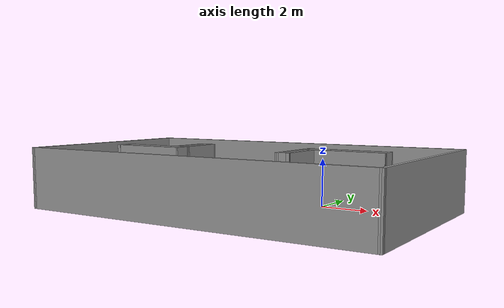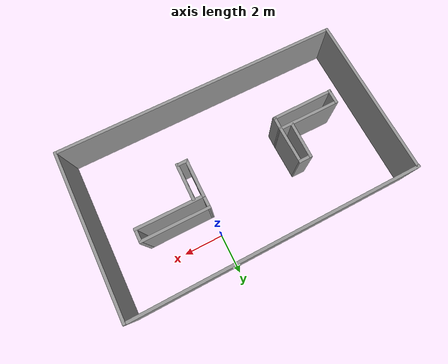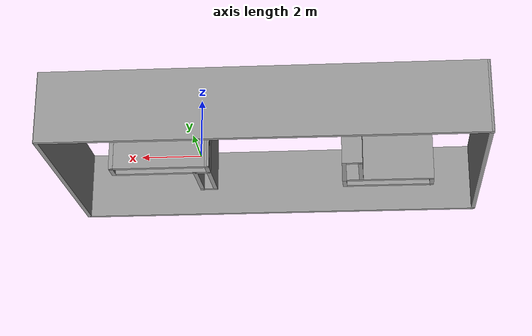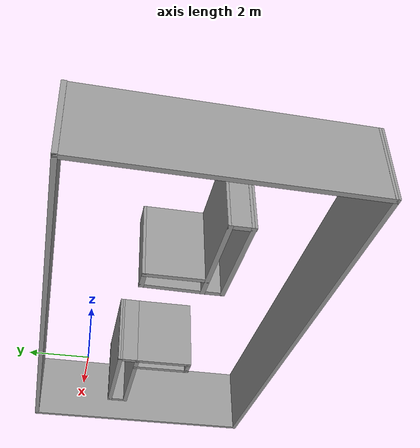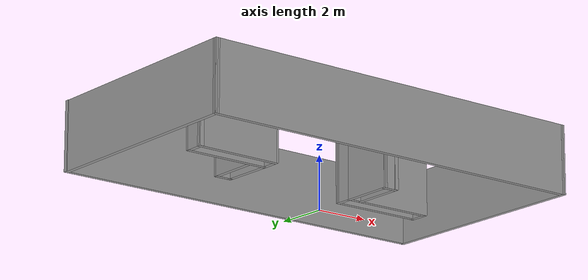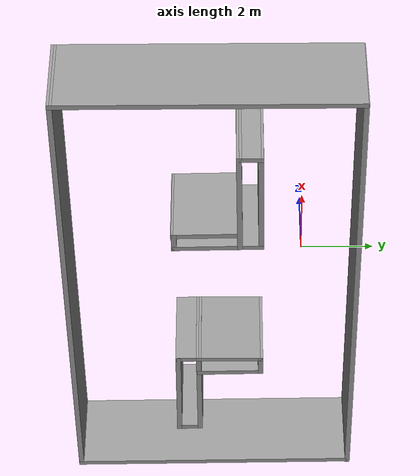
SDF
<?xml version='1.0'?>
<sdf version='1.6'>
  <model name='Untitled'>
    <pose frame=''>-2.14902 -2.53382 0 0 -0 0</pose>
    <link name='Wall_0'>
      <collision name='Wall_0_Collision'>
        <geometry>
          <box>
            <size>8.4629 0.15 2.5</size>
          </box>
        </geometry>
        <pose frame=''>0 0 1.25 0 -0 0</pose>
      </collision>
      <visual name='Wall_0_Visual'>
        <pose frame=''>0 0 1.25 0 -0 0</pose>
        <geometry>
          <box>
            <size>8.4629 0.15 2.5</size>
          </box>
        </geometry>
        <material>
          <script>
            <uri>file://media/materials/scripts/gazebo.material</uri>
            <name>Gazebo/Grey</name>
          </script>
          <ambient>1 1 1 1</ambient>
        </material>
        <meta>
          <layer>0</layer>
        </meta>
      </visual>
      <pose frame=''>-7.39012 -0.03456 0 0 -0 -1.57914</pose>
    </link>
    <link name='Wall_1'>
      <collision name='Wall_1_Collision'>
        <geometry>
          <box>
            <size>15 0.15 2.5</size>
          </box>
        </geometry>
        <pose frame=''>0 0 1.25 0 -0 0</pose>
      </collision>
      <visual name='Wall_1_Visual'>
        <pose frame=''>0 0 1.25 0 -0 0</pose>
        <geometry>
          <box>
            <size>15 0.15 2.5</size>
          </box>
        </geometry>
        <material>
          <script>
            <uri>file://media/materials/scripts/gazebo.material</uri>
            <name>Gazebo/Grey</name>
          </script>
          <ambient>1 1 1 1</ambient>
        </material>
        <meta>
          <layer>0</layer>
        </meta>
      </visual>
      <pose frame=''>0.000184 -4.19087 0 0 -0 0</pose>
    </link>
    <link name='Wall_10'>
      <collision name='Wall_10_Collision'>
        <geometry>
          <box>
            <size>1.95706 0.15 2.5</size>
          </box>
        </geometry>
        <pose frame=''>0 0 1.25 0 -0 0</pose>
      </collision>
      <visual name='Wall_10_Visual'>
        <pose frame=''>0 0 1.25 0 -0 0</pose>
        <geometry>
          <box>
            <size>1.95706 0.15 2.5</size>
          </box>
        </geometry>
        <material>
          <script>
            <uri>file://media/materials/scripts/gazebo.material</uri>
            <name>Gazebo/Grey</name>
          </script>
          <ambient>1 1 1 1</ambient>
        </material>
        <meta>
          <layer>0</layer>
        </meta>
      </visual>
      <pose frame=''>-3.17878 0.491582 0 0 -0 1.55626</pose>
    </link>
    <link name='Wall_11'>
      <collision name='Wall_11_Collision'>
        <geometry>
          <box>
            <size>0.705633 0.15 2.5</size>
          </box>
        </geometry>
        <pose frame=''>0 0 1.25 0 -0 0</pose>
      </collision>
      <visual name='Wall_11_Visual'>
        <pose frame=''>0 0 1.25 0 -0 0</pose>
        <geometry>
          <box>
            <size>0.705633 0.15 2.5</size>
          </box>
        </geometry>
        <material>
          <script>
            <uri>file://media/materials/scripts/gazebo.material</uri>
            <name>Gazebo/Grey</name>
          </script>
          <ambient>1 1 1 1</ambient>
        </material>
        <meta>
          <layer>0</layer>
        </meta>
      </visual>
      <pose frame=''>-2.88784 1.40502 0 0 -0 0</pose>
    </link>
    <link name='Wall_13'>
      <collision name='Wall_13_Collision'>
        <geometry>
          <box>
            <size>1.98011 0.15 2.5</size>
          </box>
        </geometry>
        <pose frame=''>0 0 1.25 0 -0 0</pose>
      </collision>
      <visual name='Wall_13_Visual'>
        <pose frame=''>0 0 1.25 0 -0 0</pose>
        <geometry>
          <box>
            <size>1.98011 0.15 2.5</size>
          </box>
        </geometry>
        <material>
          <script>
            <uri>file://media/materials/scripts/gazebo.material</uri>
            <name>Gazebo/Grey</name>
          </script>
          <ambient>1 1 1 1</ambient>
        </material>
        <meta>
          <layer>0</layer>
        </meta>
      </visual>
      <pose frame=''>-2.60002 0.480016 0 0 -0 -1.55987</pose>
    </link>
    <link name='Wall_15'>
      <collision name='Wall_15_Collision'>
        <geometry>
          <box>
            <size>3.5 0.15 2.5</size>
          </box>
        </geometry>
        <pose frame=''>0 0 1.25 0 -0 0</pose>
      </collision>
      <visual name='Wall_15_Visual'>
        <pose frame=''>0 0 1.25 0 -0 0</pose>
        <geometry>
          <box>
            <size>3.5 0.15 2.5</size>
          </box>
        </geometry>
        <material>
          <script>
            <uri>file://media/materials/scripts/gazebo.material</uri>
            <name>Gazebo/Grey</name>
          </script>
          <ambient>1 1 1 1</ambient>
        </material>
        <meta>
          <layer>0</layer>
        </meta>
      </visual>
      <pose frame=''>3.79244 1.41502 0 0 -0 -0.004452</pose>
    </link>
    <link name='Wall_16'>
      <collision name='Wall_16_Collision'>
        <geometry>
          <box>
            <size>0.75 0.15 2.5</size>
          </box>
        </geometry>
        <pose frame=''>0 0 1.25 0 -0 0</pose>
      </collision>
      <visual name='Wall_16_Visual'>
        <pose frame=''>0 0 1.25 0 -0 0</pose>
        <geometry>
          <box>
            <size>0.75 0.15 2.5</size>
          </box>
        </geometry>
        <material>
          <script>
            <uri>file://media/materials/scripts/gazebo.material</uri>
            <name>Gazebo/Grey</name>
          </script>
          <ambient>1 1 1 1</ambient>
        </material>
        <meta>
          <layer>0</layer>
        </meta>
      </visual>
      <pose frame=''>5.46744 1.11253 0 0 -0 -1.5708</pose>
    </link>
    <link name='Wall_17'>
      <collision name='Wall_17_Collision'>
        <geometry>
          <box>
            <size>3.5 0.15 2.5</size>
          </box>
        </geometry>
        <pose frame=''>0 0 1.25 0 -0 0</pose>
      </collision>
      <visual name='Wall_17_Visual'>
        <pose frame=''>0 0 1.25 0 -0 0</pose>
        <geometry>
          <box>
            <size>3.5 0.15 2.5</size>
          </box>
        </geometry>
        <material>
          <script>
            <uri>file://media/materials/scripts/gazebo.material</uri>
            <name>Gazebo/Grey</name>
          </script>
          <ambient>1 1 1 1</ambient>
        </material>
        <meta>
          <layer>0</layer>
        </meta>
      </visual>
      <pose frame=''>3.79244 0.815018 0 0 -0 3.13714</pose>
    </link>
    <link name='Wall_18'>
      <collision name='Wall_18_Collision'>
        <geometry>
          <box>
            <size>0.75 0.15 2.5</size>
          </box>
        </geometry>
        <pose frame=''>0 0 1.25 0 -0 0</pose>
      </collision>
      <visual name='Wall_18_Visual'>
        <pose frame=''>0 0 1.25 0 -0 0</pose>
        <geometry>
          <box>
            <size>0.75 0.15 2.5</size>
          </box>
        </geometry>
        <material>
          <script>
            <uri>file://media/materials/scripts/gazebo.material</uri>
            <name>Gazebo/Grey</name>
          </script>
          <ambient>1 1 1 1</ambient>
        </material>
        <meta>
          <layer>0</layer>
        </meta>
      </visual>
      <pose frame=''>2.11744 1.12248 0 0 -0 1.5708</pose>
    </link>
    <link name='Wall_2'>
      <collision name='Wall_2_Collision'>
        <geometry>
          <box>
            <size>8.50892 0.15 2.5</size>
          </box>
        </geometry>
        <pose frame=''>0 0 1.25 0 -0 0</pose>
      </collision>
      <visual name='Wall_2_Visual'>
        <pose frame=''>0 0 1.25 0 -0 0</pose>
        <geometry>
          <box>
            <size>8.50892 0.15 2.5</size>
          </box>
        </geometry>
        <material>
          <script>
            <uri>file://media/materials/scripts/gazebo.material</uri>
            <name>Gazebo/Grey</name>
          </script>
          <ambient>1 1 1 1</ambient>
        </material>
        <meta>
          <layer>0</layer>
        </meta>
      </visual>
      <pose frame=''>7.41093 -0.011429 0 0 -0 1.57421</pose>
    </link>
    <link name='Wall_20'>
      <collision name='Wall_20_Collision'>
        <geometry>
          <box>
            <size>2.01158 0.15 2.5</size>
          </box>
        </geometry>
        <pose frame=''>0 0 1.25 0 -0 0</pose>
      </collision>
      <visual name='Wall_20_Visual'>
        <pose frame=''>0 0 1.25 0 -0 0</pose>
        <geometry>
          <box>
            <size>2.01158 0.15 2.5</size>
          </box>
        </geometry>
        <material>
          <script>
            <uri>file://media/materials/scripts/gazebo.material</uri>
            <name>Gazebo/Grey</name>
          </script>
          <ambient>1 1 1 1</ambient>
        </material>
        <meta>
          <layer>0</layer>
        </meta>
      </visual>
      <pose frame=''>2.10601 -0.108242 0 0 -0 -1.58308</pose>
    </link>
    <link name='Wall_21'>
      <collision name='Wall_21_Collision'>
        <geometry>
          <box>
            <size>0.623514 0.15 2.5</size>
          </box>
        </geometry>
        <pose frame=''>0 0 1.25 0 -0 0</pose>
      </collision>
      <visual name='Wall_21_Visual'>
        <pose frame=''>0 0 1.25 0 -0 0</pose>
        <geometry>
          <box>
            <size>0.623514 0.15 2.5</size>
          </box>
        </geometry>
        <material>
          <script>
            <uri>file://media/materials/scripts/gazebo.material</uri>
            <name>Gazebo/Grey</name>
          </script>
          <ambient>1 1 1 1</ambient>
        </material>
        <meta>
          <layer>0</layer>
        </meta>
      </visual>
      <pose frame=''>2.33705 -1.03896 0 0 -0 0</pose>
    </link>
    <link name='Wall_22'>
      <collision name='Wall_22_Collision'>
        <geometry>
          <box>
            <size>2.01158 0.15 2.5</size>
          </box>
        </geometry>
        <pose frame=''>0 0 1.25 0 -0 0</pose>
      </collision>
      <visual name='Wall_22_Visual'>
        <pose frame=''>0 0 1.25 0 -0 0</pose>
        <geometry>
          <box>
            <size>2.01158 0.15 2.5</size>
          </box>
        </geometry>
        <material>
          <script>
            <uri>file://media/materials/scripts/gazebo.material</uri>
            <name>Gazebo/Grey</name>
          </script>
          <ambient>1 1 1 1</ambient>
        </material>
        <meta>
          <layer>0</layer>
        </meta>
      </visual>
      <pose frame=''>2.58524 -0.123451 0 0 -0 1.55851</pose>
    </link>
    <link name='Wall_3'>
      <collision name='Wall_3_Collision'>
        <geometry>
          <box>
            <size>14.9023 0.15 2.5</size>
          </box>
        </geometry>
        <pose frame=''>0 0 1.25 0 -0 0</pose>
      </collision>
      <visual name='Wall_3_Visual'>
        <pose frame=''>0 0 1.25 0 -0 0</pose>
        <geometry>
          <box>
            <size>14.9023 0.15 2.5</size>
          </box>
        </geometry>
        <material>
          <script>
            <uri>file://media/materials/scripts/gazebo.material</uri>
            <name>Gazebo/Grey</name>
          </script>
          <ambient>1 1 1 1</ambient>
        </material>
        <meta>
          <layer>0</layer>
        </meta>
      </visual>
      <pose frame=''>-0.002508 4.15644 0 0 -0 -3.13689</pose>
    </link>
    <link name='Wall_5'>
      <collision name='Wall_5_Collision'>
        <geometry>
          <box>
            <size>0.781931 0.15 2.5</size>
          </box>
        </geometry>
        <pose frame=''>0 0 1.25 0 -0 0</pose>
      </collision>
      <visual name='Wall_5_Visual'>
        <pose frame=''>0 0 1.25 0 -0 0</pose>
        <geometry>
          <box>
            <size>0.781931 0.15 2.5</size>
          </box>
        </geometry>
        <material>
          <script>
            <uri>file://media/materials/scripts/gazebo.material</uri>
            <name>Gazebo/Grey</name>
          </script>
          <ambient>1 1 1 1</ambient>
        </material>
        <meta>
          <layer>0</layer>
        </meta>
      </visual>
      <pose frame=''>-5.69576 -0.767158 0 0 -0 -1.58896</pose>
    </link>
    <link name='Wall_6'>
      <collision name='Wall_6_Collision'>
        <geometry>
          <box>
            <size>3.2417 0.15 2.5</size>
          </box>
        </geometry>
        <pose frame=''>0 0 1.25 0 -0 0</pose>
      </collision>
      <visual name='Wall_6_Visual'>
        <pose frame=''>0 0 1.25 0 -0 0</pose>
        <geometry>
          <box>
            <size>3.2417 0.15 2.5</size>
          </box>
        </geometry>
        <material>
          <script>
            <uri>file://media/materials/scripts/gazebo.material</uri>
            <name>Gazebo/Grey</name>
          </script>
          <ambient>1 1 1 1</ambient>
        </material>
        <meta>
          <layer>0</layer>
        </meta>
      </visual>
      <pose frame=''>-4.15585 -1.05838 0 0 -0 0.009508</pose>
    </link>
    <link name='Wall_7'>
      <collision name='Wall_7_Collision'>
        <geometry>
          <box>
            <size>0.758804 0.15 2.5</size>
          </box>
        </geometry>
        <pose frame=''>0 0 1.25 0 -0 0</pose>
      </collision>
      <visual name='Wall_7_Visual'>
        <pose frame=''>0 0 1.25 0 -0 0</pose>
        <geometry>
          <box>
            <size>0.758804 0.15 2.5</size>
          </box>
        </geometry>
        <material>
          <script>
            <uri>file://media/materials/scripts/gazebo.material</uri>
            <name>Gazebo/Grey</name>
          </script>
          <ambient>1 1 1 1</ambient>
        </material>
        <meta>
          <layer>0</layer>
        </meta>
      </visual>
      <pose frame=''>-2.59576 -0.739332 0 0 -0 1.55194</pose>
    </link>
    <link name='Wall_8'>
      <collision name='Wall_8_Collision'>
        <geometry>
          <box>
            <size>3.25 0.15 2.5</size>
          </box>
        </geometry>
        <pose frame=''>0 0 1.25 0 -0 0</pose>
      </collision>
      <visual name='Wall_8_Visual'>
        <pose frame=''>0 0 1.25 0 -0 0</pose>
        <geometry>
          <box>
            <size>3.25 0.15 2.5</size>
          </box>
        </geometry>
        <material>
          <script>
            <uri>file://media/materials/scripts/gazebo.material</uri>
            <name>Gazebo/Grey</name>
          </script>
          <ambient>1 1 1 1</ambient>
        </material>
        <meta>
          <layer>0</layer>
        </meta>
      </visual>
      <pose frame=''>-4.14002 -0.438114 0 0 -0 -3.13957</pose>
    </link>
    <static>1</static>
  </model>
</sdf>
